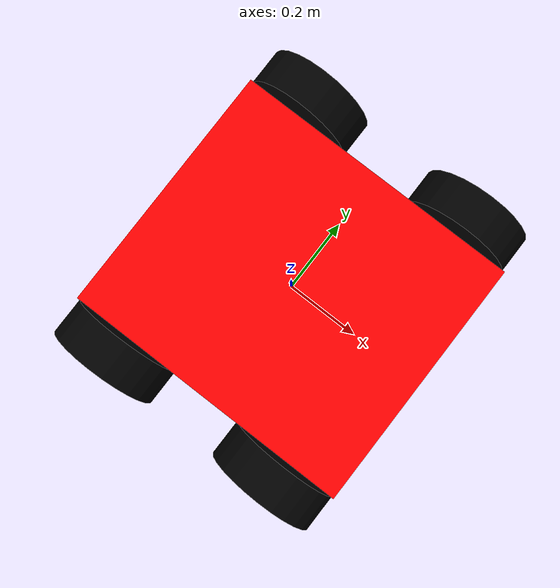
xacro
<?xml version="1.0"?>
<robot xmlns:xacro="http://www.ros.org/wiki/xacro" name="rover">

    <link name="base">

    </link>

    <link name="body">
        <inertial>
            <origin xyz="0.0 0.0 0.0" rpy="0.0 0.0 0.0"/>
            <mass value="1.0"/>
            <inertia ixx="0.0" ixy="0.0" ixz="0.0" iyy="0.0" iyz="0.0" izz="0.0"/>
        </inertial>
        <visual name="">
            <origin xyz="0.0 0.0 0.0" rpy="0.0 0.0 0.0"/>
            <geometry>
                <box size="0.8 0.7 0.1"/>
            </geometry>
            <material name="">
                <color rgba="1.0 0.0 0.0 1.0"/>
                <texture filename=""/>
            </material>
        </visual>
        <collision>
            <origin xyz="0.0 0.0 0.0" rpy="0.0 0.0 0.0"/>
            <geometry>
                <box size="0.0 0.0 0.0"/>
            </geometry>
        </collision>
    </link>
    <joint name="world" type="revolute">
        <origin xyz="0.0 0.0 0.0" rpy="0.0 0.0 0.0"/>
        <parent link="base"/>
        <child link="body"/>
        <axis xyz="0.0 0.0 1.0"/>
        <limit lower="0.0" upper="0.0" effort="0.0" velocity="0.0"/>

    </joint>

    <!--front_right_wheel-->

    <xacro:macro name="wheel" params="name x y ">

        <link name="${name}_wheel">
            <inertial>
                <origin xyz="0.0 0.0 0.0" rpy="0.0 0.0 0.0"/>
                <mass value="0.5"/>
                <inertia ixx="0.0" ixy="0.0" ixz="0.0" iyy="0.0" iyz="0.0" izz="0.0"/>
            </inertial>
            <visual name="">
                <origin xyz="0.0 0.0 0.0" rpy="0.0 0.0 0.0"/>
                <geometry>
                    <cylinder radius="0.15" length="0.1"/>
                </geometry>
                <material name="black">
                    <color rgba="0 0.0 0.0 1.0"/>
                    <texture filename=""/>
                </material>
            </visual>
            <collision>
                <origin xyz="0.0 0.0 0.0" rpy="0.0 0.0 0.0"/>
                <geometry>
                    <box size="0.0 0.0 0.0"/>
                </geometry>
            </collision>
        </link>
        <joint name="${name}_wheel" type="continuous">
                <origin xyz="${x} ${y}  0.0" rpy="1.57 0 0"/>
                <parent link="body"/>
                <child link="${name}_wheel"/>
                <axis xyz="0.0 0.0 1.0"/>
        </joint>

    </xacro:macro>
    <xacro:wheel name="rear_right " x="0.25" y="0.4"/>
    <xacro:wheel name="front_right " x="-0.25" y="0.4"/>
    <xacro:wheel name="rear_left " x="0.25" y="-0.4"/>
    <xacro:wheel name="front_left " x="-0.25" y="-0.4"/>

</robot>
